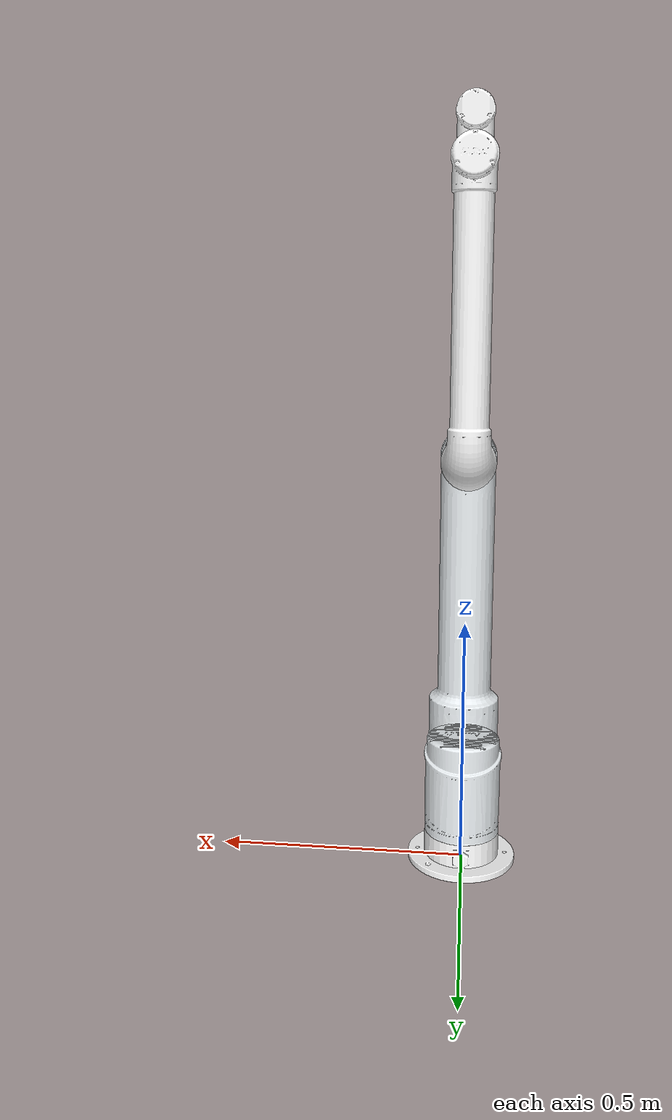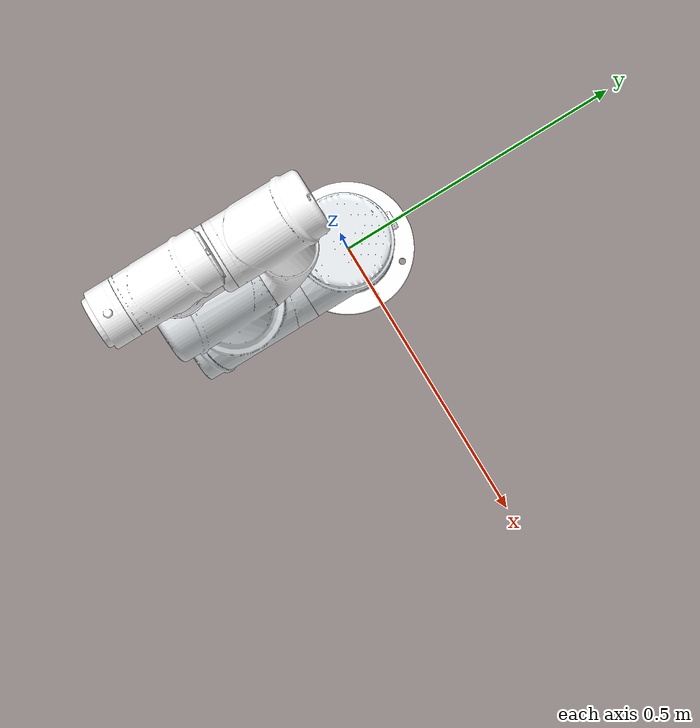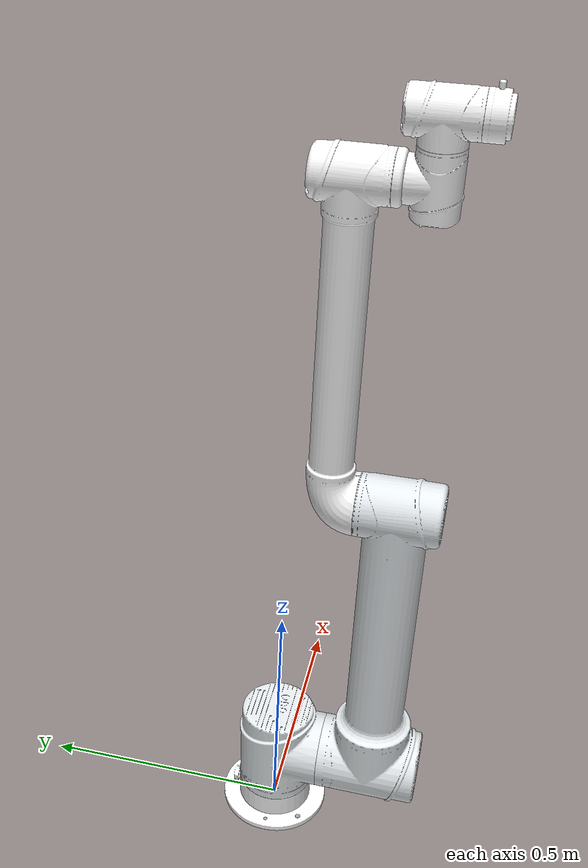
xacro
<?xml version="1.0"?>
<robot xmlns:xacro="http://www.ros.org/wiki/xacro" name="aubo_i10">
  <xacro:include filename="$(find aubo_description)/urdf/aubo_i10.urdf.xacro" />
  <xacro:include filename="$(find aubo_description)/urdf/common.gazebo.xacro" />

  <!-- World -->
  <link name="world"/>

  <!-- Arm -->
  <joint name="base_joint" type="fixed">
    <origin xyz="0 0 0" rpy="0 0 0"/>
    <parent link="world"/>
    <child link = "base_link"/>
  </joint>

  <xacro:aubo_i10 prefix="">
    <limit lower="-3.05" upper="3.05" velocity="3.14" effort="34.0"/>
  </xacro:aubo_i10>

</robot>

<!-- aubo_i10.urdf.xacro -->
<robot xmlns:xacro="http://www.ros.org/wiki/xacro">

  <xacro:macro name="aubo_i10" params="prefix:=''
    *wrist3_limit">

    <link name="${prefix}base_link">
      <visual>
        <origin xyz="0 0 0" rpy="0 0 0" />
        <geometry>
          <mesh filename="package://aubo_description/meshes/aubo_i10/base_link.DAE" />
        </geometry>
        <material name="">
          <color rgba="1 1 1 1" />
        </material>
      </visual>
      <collision>
        <origin xyz="0 0 0" rpy="0 0 0" />
        <geometry>
          <mesh filename="package://aubo_description/meshes/aubo_i10/base_link.STL" />
        </geometry>
      </collision>
      <inertial>
        <origin xyz="-2.7535E-06 0.00054789 0.02299" rpy="0 0 0" />
        <mass value="1.2345" />
        <inertia
          ixx="0.0029215" ixy="2.2046E-07" ixz="-3.4773E-08"
          iyy="0.0028546" iyz="-7.6362E-06"
          izz="0.0051176" />
      </inertial>
    </link>

    <joint name="${prefix}shoulder_joint" type="revolute">
      <origin xyz="0. 0. 0.1632" rpy="0. 0. ${pi}"/>
      <parent link="${prefix}base_link"/>
      <child link="${prefix}shoulder_Link"/>
      <axis xyz="0 0 1"/>
      <limit lower="-3.05" upper="3.05" velocity="3.14" effort="207.0"/>
    </joint>

    <link name="${prefix}shoulder_Link">
      <visual>
        <origin xyz="0 0 0" rpy="0 0 0" />
        <geometry>
          <mesh
            filename="package://aubo_description/meshes/aubo_i10/shoulder_Link.DAE" />
        </geometry>
        <material name="">
          <color rgba="0.89804 0.91765 0.92941 1" />
        </material>
      </visual>
      <collision>
        <origin xyz="0 0 0" rpy="0 0 0" />
        <geometry>
          <mesh filename="package://aubo_description/meshes/aubo_i10/shoulder_Link.STL" />
        </geometry>
      </collision>
      <inertial>
        <origin xyz="0.00029287 0.14173 0.54281" rpy="0 0 0" />
        <mass value="10.994" />
        <inertia
          ixx="2.2088" ixy="-0.00043922" ixz="-0.0025417"
          iyy="2.1473" iyz="-0.049088"
          izz="0.07998" />
      </inertial>
    </link>

    <joint name="${prefix}upperArm_joint" type="revolute">
      <origin xyz="0. 0.2013 0." rpy="${-pi/2} ${-pi/2} 0"/>
      <parent link="${prefix}shoulder_Link"/>
      <child link="${prefix}upperArm_Link"/>
      <axis xyz="0 0 1"/>
      <limit lower="-3.05" upper="3.05" velocity="3.14" effort="207.0"/>
    </joint>

    <link name="${prefix}upperArm_Link">
      <visual>
        <origin xyz="0 0 0" rpy="0 0 0" />
        <geometry>
          <mesh filename="package://aubo_description/meshes/aubo_i10/upperArm_Link.DAE" />
        </geometry>
        <material name="">
          <color rgba="0.89804 0.91765 0.92941 1" />
        </material>
      </visual>
      <collision>
        <origin xyz="0 0 0" rpy="0 0 0" />
        <geometry>
          <mesh filename="package://aubo_description/meshes/aubo_i10/upperArm_Link.STL" />
        </geometry>
      </collision>
      <inertial>
        <origin xyz="0.31908 -3.7071E-06 -0.0042956" rpy="0 0 0" />
        <mass value="5.3139" />
        <inertia
          ixx="0.0095171" ixy="7.2849E-06" ixz="-6.7014E-06"
          iyy="0.11411" iyz="-1.1529E-06"
          izz="0.11411" />
      </inertial>
    </link>

    <joint name="${prefix}foreArm_joint" type="revolute">
      <origin xyz="0.647 0. 0." rpy="${pi} 0. 0."/>
      <parent link="${prefix}upperArm_Link"/>
      <child link="${prefix}foreArm_Link"/>
      <axis xyz="0 0 1"/>
      <limit lower="-3.05" upper="3.05" velocity="2.62" effort="207.0"/>
    </joint>

    <link name="${prefix}foreArm_Link">
      <visual>
        <origin xyz="0 0 0" rpy="0 0 0" />
        <geometry>
          <mesh filename="package://aubo_description/meshes/aubo_i10/foreArm_Link.DAE" />
        </geometry>
        <material name="">
          <color rgba="1 1 1 1" />
        </material>
      </visual>
      <collision>
        <origin xyz="0 0 0" rpy="0 0 0" />
        <geometry>
          <mesh filename="package://aubo_description/meshes/aubo_i10/foreArm_Link.STL" />
        </geometry>
      </collision>
      <inertial>
        <origin xyz="0.24431 6.6794E-06 0.12549" rpy="0 0 0" />
        <mass value="3.1022" />
        <inertia
          ixx="0.0027288" ixy="-6.2713E-06" ixz="-0.0018082"
          iyy="0.097825" iyz="3.5731E-07"
          izz="0.097866" />
      </inertial>
    </link>

    <joint name="${prefix}wrist1_joint" type="revolute">
      <origin xyz="0.6005 0. 0." rpy="${-pi} 0. ${pi/2}"/>
      <parent link="${prefix}foreArm_Link"/>
      <child link="${prefix}wrist1_Link"/>
      <axis xyz="0 0 1"/>
      <limit lower="-3.05" upper="3.05" velocity="3.14" effort="34.0"/>
    </joint>

    <link name="${prefix}wrist1_Link">
      <visual>
        <origin xyz="0 0 0" rpy="0 0 0" />
        <geometry>
          <mesh filename="package://aubo_description/meshes/aubo_i10/wrist1_Link.DAE" />
        </geometry>
        <material name="">
          <color rgba="1 1 1 1" />
        </material>
      </visual>
      <collision>
        <origin xyz="0 0 0" rpy="0 0 0" />
        <geometry>
          <mesh filename="package://aubo_description/meshes/aubo_i10/wrist1_Link.STL" />
        </geometry>
      </collision>
      <inertial>
        <origin xyz="5.2305E-07 0.00026581 -0.0027894" rpy="0 0 0" />
        <mass value="0.57981" />
        <inertia
          ixx="0.00088336" ixy="-6.425E-09" ixz="5.1594E-09"
          iyy="0.00046118" iyz="-1.0734E-06"
          izz="0.00085336" />
      </inertial>
    </link>

    <joint name="${prefix}wrist2_joint" type="revolute">
      <origin xyz="0. 0.1025 0." rpy="${-pi/2} 0. 0."/>
      <parent link="${prefix}wrist1_Link"/>
      <child link="${prefix}wrist2_Link"/>
      <axis xyz="0 0 1"/>
      <limit lower="-3.05" upper="3.05" velocity="3.14" effort="34.0"/>
    </joint>

    <link name="${prefix}wrist2_Link">
      <visual>
        <origin xyz="0 0 0" rpy="0 0 0" />
        <geometry>
          <mesh filename="package://aubo_description/meshes/aubo_i10/wrist2_Link.DAE" />
        </geometry>
        <material name="">
          <color rgba="1 1 1 1" />
        </material>
      </visual>
      <collision>
        <origin xyz="0 0 0" rpy="0 0 0" />
        <geometry>
          <mesh filename="package://aubo_description/meshes/aubo_i10/wrist2_Link.STL" />
        </geometry>
      </collision>
      <inertial>
        <origin xyz="-5.2305E-07 -0.00026581 -0.0027894" rpy="0 0 0" />
        <mass value="0.57981" />
        <inertia
          ixx="0.00088336" ixy="-6.4251E-09" ixz="-5.1594E-09"
          iyy="0.00046118" iyz="1.0734E-06"
          izz="0.00085336" />
      </inertial>
    </link>

    <joint name="${prefix}wrist3_joint" type="revolute">
      <origin xyz="0. -0.094 0." rpy="${pi/2} 0. 0."/>
      <parent link="${prefix}wrist2_Link"/>
      <child link="${prefix}wrist3_Link"/>
      <axis xyz="0 0 1"/>
      <xacro:insert_block name="wrist3_limit"/>
    </joint>

    <link name="${prefix}wrist3_Link">
      <visual>
        <origin xyz="0 0 0" rpy="0 0 0" />
        <geometry>
          <mesh filename="package://aubo_description/meshes/aubo_i10/wrist3_Link.DAE" />
        </geometry>
        <material name="">
          <color rgba="1 1 1 1" />
        </material>
      </visual>
      <collision>
        <origin xyz="0 0 0" rpy="0 0 0" />
        <geometry>
          <mesh filename="package://aubo_description/meshes/aubo_i10/wrist3_Link.STL" />
        </geometry>
      </collision>
      <inertial>
        <origin xyz="-2.2127E-09 0.00023722 -0.018629"/>
        <mass value="0.13669"/>
        <inertia
          ixx="6.0946E-05" ixy="9.3663E-12" ixz="-1.3841E-12"
          iyy="5.9501E-05" iyz="1.9944E-07"
          izz="9.6981E-05" />
      </inertial>
    </link>

  </xacro:macro>

</robot>
